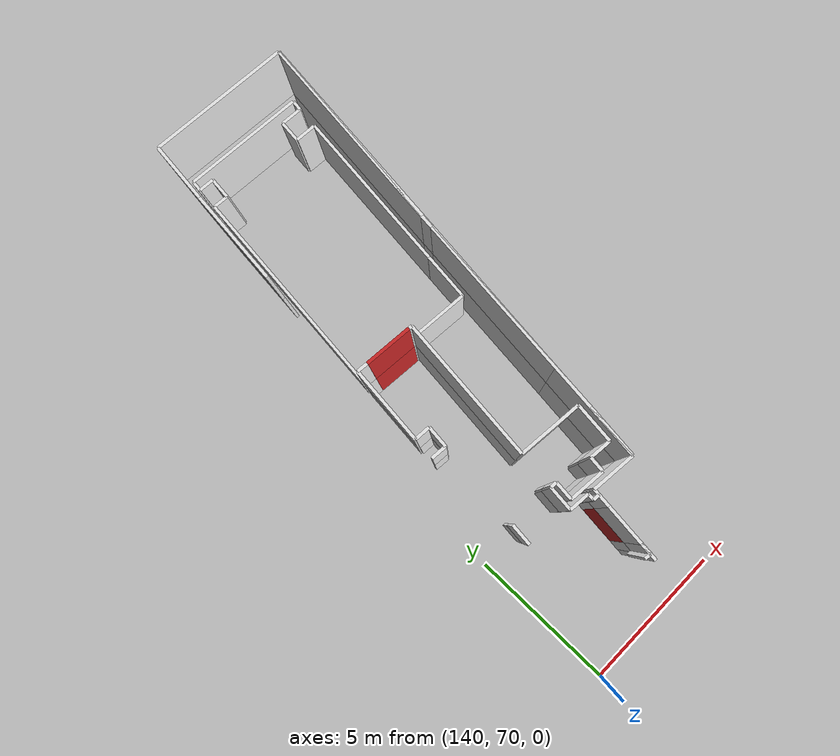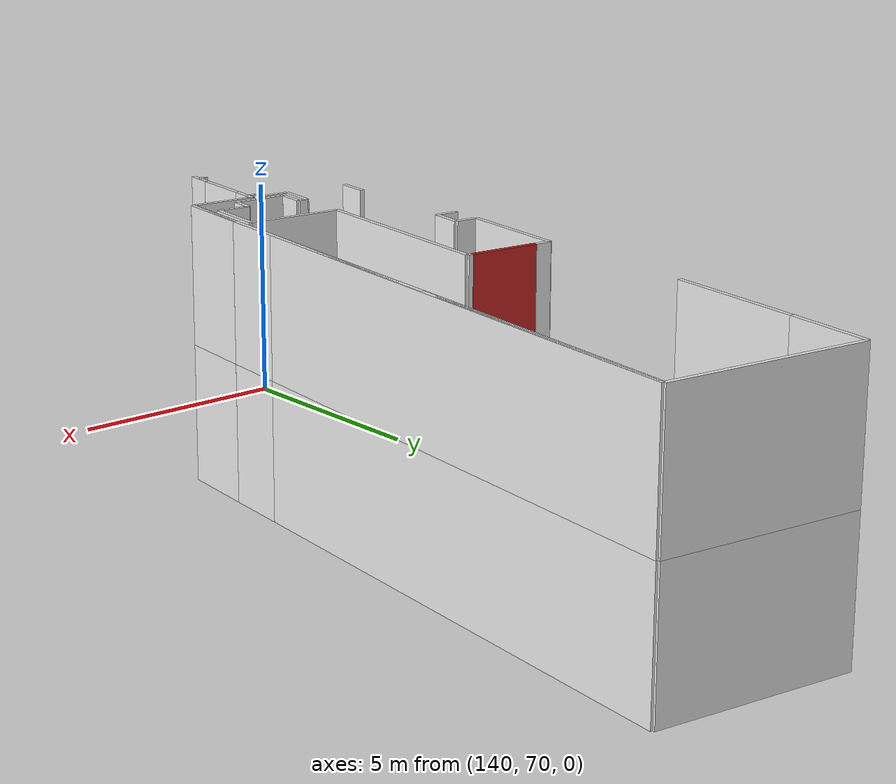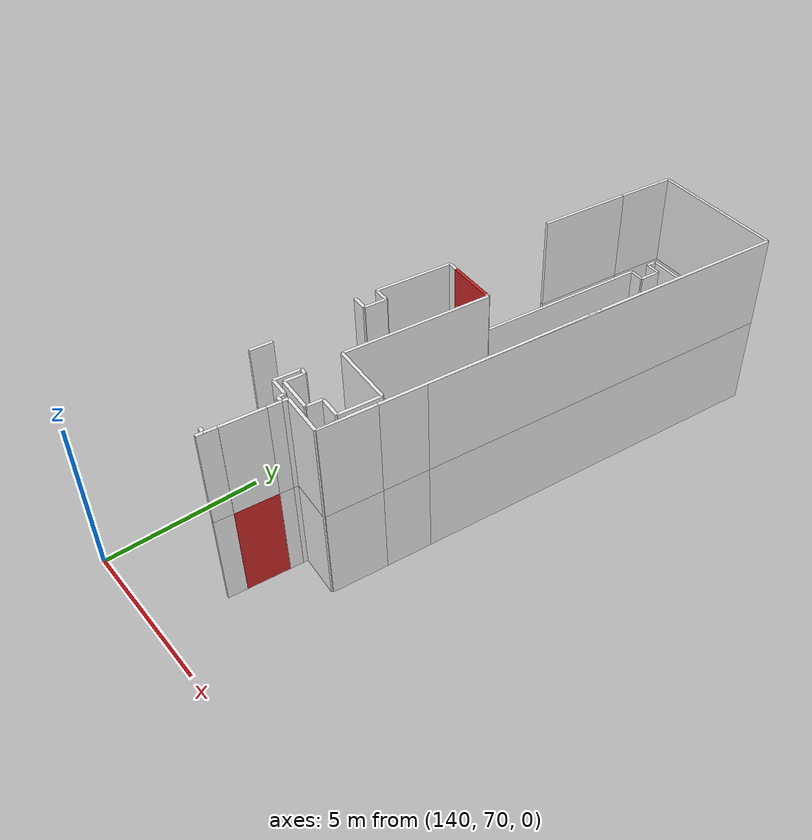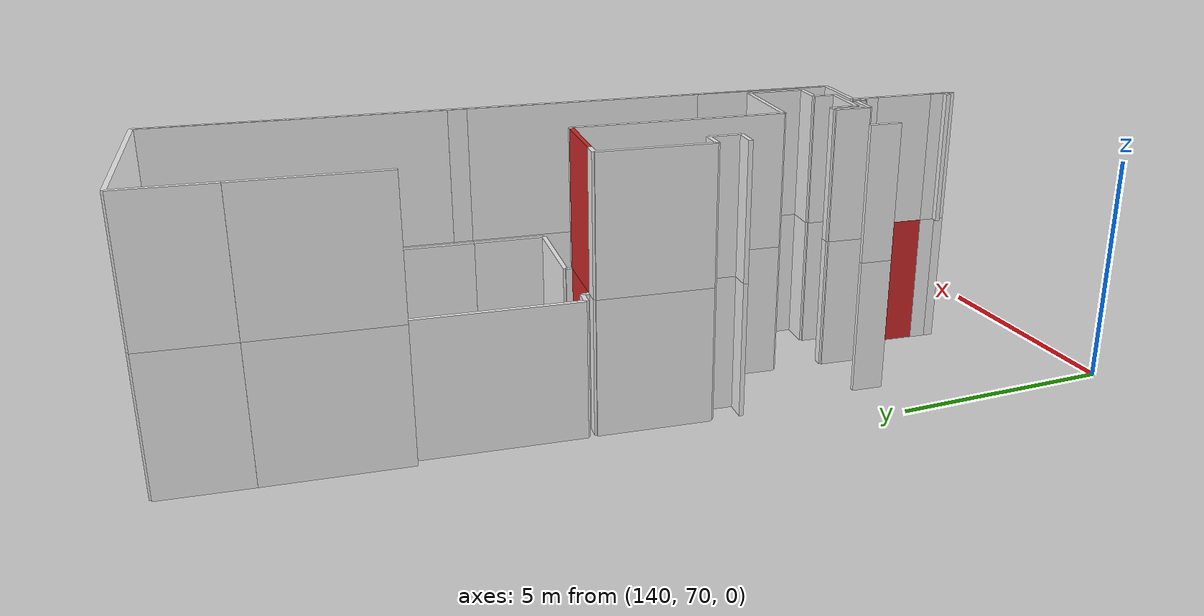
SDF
<sdf version="1.6">
 <world name="default">
  <model name="wall_142.5_81.3_1.5">
   <static>true</static>
   <pose>142.54999999998836 81.33499999996275 1.5 0 0 -0.09966865273705577</pose>
   <link name="link">
    <visual name="visual">
     <geometry><box><size>1.5074813432052014 0.1 3</size></box></geometry>
     <material>
      <script><uri>file://media/materials/scripts/gazebo.material</uri><name>Gazebo/Red</name></script>
     </material>
    </visual>
    <collision name="collision"><geometry><box><size>1.5074813432052014 0.1 3</size></box></geometry></collision>
   </link>
  </model>
  <model name="wall_143.5_73.3_1.5">
   <static>true</static>
   <pose>143.4550000000163 73.29500000015832 1.5 0 0 1.4718835320591757</pose>
   <link name="link">
    <visual name="visual">
     <geometry><box><size>1.3164345787571878 0.1 3</size></box></geometry>
     <material>
      <script><uri>file://media/materials/scripts/gazebo.material</uri><name>Gazebo/Red</name></script>
     </material>
    </visual>
    <collision name="collision"><geometry><box><size>1.3164345787571878 0.1 3</size></box></geometry></collision>
   </link>
  </model>
  <model name="wall_142.5_81.3_4.5">
   <static>true</static>
   <pose>142.54999999998836 81.33499999996275 4.5 0 0 -0.09966865273705577</pose>
   <link name="link">
    <visual name="visual">
     <geometry><box><size>1.5074813432052014 0.1 3</size></box></geometry>
     <material>
      <script><uri>file://media/materials/scripts/gazebo.material</uri><name>Gazebo/Red</name></script>
     </material>
    </visual>
    <collision name="collision"><geometry><box><size>1.5074813432052014 0.1 3</size></box></geometry></collision>
   </link>
  </model>
  <model name="wall_142.9_75.4_1.5">
   <static>true</static>
   <pose>142.9100000000035 75.42999999993481 1.5 0 0 -0.09966865257760905</pose>
   <link name="link">
    <visual name="visual">
     <geometry><box><size>0.20099751243585498 0.1 3</size></box></geometry>
     <material>
      <script><uri>file://media/materials/scripts/gazebo.material</uri><name>Gazebo/White</name></script>
     </material>
    </visual>
    <collision name="collision"><geometry><box><size>0.20099751243585498 0.1 3</size></box></geometry></collision>
   </link>
  </model>
  <model name="wall_143.0_75.1_1.5">
   <static>true</static>
   <pose>142.98000000001048 75.11999999987893 1.5 0 0 -1.6704649792668482</pose>
   <link name="link">
    <visual name="visual">
     <geometry><box><size>0.6029925373596918 0.1 3</size></box></geometry>
     <material>
      <script><uri>file://media/materials/scripts/gazebo.material</uri><name>Gazebo/White</name></script>
     </material>
    </visual>
    <collision name="collision"><geometry><box><size>0.6029925373596918 0.1 3</size></box></geometry></collision>
   </link>
  </model>
  <model name="wall_143.5_74.8_1.5">
   <static>true</static>
   <pose>143.52499999999418 74.76499999989755 1.5 0 0 -0.09536204679293706</pose>
   <link name="link">
    <visual name="visual">
     <geometry><box><size>1.1552488908849852 0.1 3</size></box></geometry>
     <material>
      <script><uri>file://media/materials/scripts/gazebo.material</uri><name>Gazebo/White</name></script>
     </material>
    </visual>
    <collision name="collision"><geometry><box><size>1.1552488908849852 0.1 3</size></box></geometry></collision>
   </link>
  </model>
  <model name="wall_144.1_75.0_1.5">
   <static>true</static>
   <pose>144.125 74.9550000000745 1.5 0 0 1.469107474983833</pose>
   <link name="link">
    <visual name="visual">
     <geometry><box><size>0.4925444144680799 0.1 3</size></box></geometry>
     <material>
      <script><uri>file://media/materials/scripts/gazebo.material</uri><name>Gazebo/White</name></script>
     </material>
    </visual>
    <collision name="collision"><geometry><box><size>0.4925444144680799 0.1 3</size></box></geometry></collision>
   </link>
  </model>
  <model name="wall_144.5_75.2_1.5">
   <static>true</static>
   <pose>144.49500000002445 75.16500000003725 1.5 0 0 -0.10110337216347741</pose>
   <link name="link">
    <visual name="visual">
     <geometry><box><size>0.6935416354083843 0.1 3</size></box></geometry>
     <material>
      <script><uri>file://media/materials/scripts/gazebo.material</uri><name>Gazebo/White</name></script>
     </material>
    </visual>
    <collision name="collision"><geometry><box><size>0.6935416354083843 0.1 3</size></box></geometry></collision>
   </link>
  </model>
  <model name="wall_144.9_75.8_1.5">
   <static>true</static>
   <pose>144.90499999999884 75.77499999990687 1.5 0 0 1.4703602147900217</pose>
   <link name="link">
    <visual name="visual">
     <geometry><box><size>1.2965338407007314 0.1 3</size></box></geometry>
     <material>
      <script><uri>file://media/materials/scripts/gazebo.material</uri><name>Gazebo/White</name></script>
     </material>
    </visual>
    <collision name="collision"><geometry><box><size>1.2965338407007314 0.1 3</size></box></geometry></collision>
   </link>
  </model>
  <model name="wall_143.9_76.5_1.5">
   <static>true</static>
   <pose>143.94999999998254 76.52499999990687 1.5 0 0 3.039012801188522</pose>
   <link name="link">
    <visual name="visual">
     <geometry><box><size>2.050780339260853 0.1 3</size></box></geometry>
     <material>
      <script><uri>file://media/materials/scripts/gazebo.material</uri><name>Gazebo/White</name></script>
     </material>
    </visual>
    <collision name="collision"><geometry><box><size>2.050780339260853 0.1 3</size></box></geometry></collision>
   </link>
  </model>
  <model name="wall_143.2_78.9_1.5">
   <static>true</static>
   <pose>143.16500000000815 78.93999999994412 1.5 0 0 1.4694135127045715</pose>
   <link name="link">
    <visual name="visual">
     <geometry><box><size>4.6438453894440865 0.1 3</size></box></geometry>
     <material>
      <script><uri>file://media/materials/scripts/gazebo.material</uri><name>Gazebo/White</name></script>
     </material>
    </visual>
    <collision name="collision"><geometry><box><size>4.6438453894440865 0.1 3</size></box></geometry></collision>
   </link>
  </model>
  <model name="wall_143.4_81.3_1.5">
   <static>true</static>
   <pose>143.35000000000582 81.25499999988824 1.5 0 0 3.041924003346254</pose>
   <link name="link">
    <visual name="visual">
     <geometry><box><size>0.10049875622371936 0.1 3</size></box></geometry>
     <material>
      <script><uri>file://media/materials/scripts/gazebo.material</uri><name>Gazebo/White</name></script>
     </material>
    </visual>
    <collision name="collision"><geometry><box><size>0.10049875622371936 0.1 3</size></box></geometry></collision>
   </link>
  </model>
  <model name="wall_141.6_81.4_1.5">
   <static>true</static>
   <pose>141.63000000000466 81.43000000016764 1.5 0 0 3.0244839089037323</pose>
   <link name="link">
    <visual name="visual">
     <geometry><box><size>0.3423448553444534 0.1 3</size></box></geometry>
     <material>
      <script><uri>file://media/materials/scripts/gazebo.material</uri><name>Gazebo/White</name></script>
     </material>
    </visual>
    <collision name="collision"><geometry><box><size>0.3423448553444534 0.1 3</size></box></geometry></collision>
   </link>
  </model>
  <model name="wall_141.3_80.2_1.5">
   <static>true</static>
   <pose>141.33500000002095 80.22500000009313 1.5 0 0 -1.6724851785502959</pose>
   <link name="link">
    <visual name="visual">
     <geometry><box><size>2.4627220713902527 0.1 3</size></box></geometry>
     <material>
      <script><uri>file://media/materials/scripts/gazebo.material</uri><name>Gazebo/White</name></script>
     </material>
    </visual>
    <collision name="collision"><geometry><box><size>2.4627220713902527 0.1 3</size></box></geometry></collision>
   </link>
  </model>
  <model name="wall_141.5_79.0_1.5">
   <static>true</static>
   <pose>141.46000000002095 78.97999999998137 1.5 0 0 -0.07982998578626932</pose>
   <link name="link">
    <visual name="visual">
     <geometry><box><size>0.5015974481623489 0.1 3</size></box></geometry>
     <material>
      <script><uri>file://media/materials/scripts/gazebo.material</uri><name>Gazebo/White</name></script>
     </material>
    </visual>
    <collision name="collision"><geometry><box><size>0.5015974481623489 0.1 3</size></box></geometry></collision>
   </link>
  </model>
  <model name="wall_141.7_78.6_1.5">
   <static>true</static>
   <pose>141.67500000001746 78.61499999999069 1.5 0 0 -1.6718996985493473</pose>
   <link name="link">
    <visual name="visual">
     <geometry><box><size>0.693541635321099 0.1 3</size></box></geometry>
     <material>
      <script><uri>file://media/materials/scripts/gazebo.material</uri><name>Gazebo/White</name></script>
     </material>
    </visual>
    <collision name="collision"><geometry><box><size>0.693541635321099 0.1 3</size></box></geometry></collision>
   </link>
  </model>
  <model name="wall_141.4_78.3_1.5">
   <static>true</static>
   <pose>141.39000000001397 78.2949999999255 1.5 0 0 3.0419240014674718</pose>
   <link name="link">
    <visual name="visual">
     <geometry><box><size>0.5024937810375105 0.1 3</size></box></geometry>
     <material>
      <script><uri>file://media/materials/scripts/gazebo.material</uri><name>Gazebo/White</name></script>
     </material>
    </visual>
    <collision name="collision"><geometry><box><size>0.5024937810375105 0.1 3</size></box></geometry></collision>
   </link>
  </model>
  <model name="wall_141.3_75.1_1.5">
   <static>true</static>
   <pose>141.32499999998254 75.14500000001863 1.5 0 0 -1.6718996984815795</pose>
   <link name="link">
    <visual name="visual">
     <geometry><box><size>0.6935416357843824 0.1 3</size></box></geometry>
     <material>
      <script><uri>file://media/materials/scripts/gazebo.material</uri><name>Gazebo/White</name></script>
     </material>
    </visual>
    <collision name="collision"><geometry><box><size>0.6935416357843824 0.1 3</size></box></geometry></collision>
   </link>
  </model>
  <model name="wall_143.4_72.5_1.5">
   <static>true</static>
   <pose>143.36999999999534 72.45999999996275 1.5 0 0 1.460139105621001</pose>
   <link name="link">
    <visual name="visual">
     <geometry><box><size>0.36221540586283607 0.1 3</size></box></geometry>
     <material>
      <script><uri>file://media/materials/scripts/gazebo.material</uri><name>Gazebo/White</name></script>
     </material>
    </visual>
    <collision name="collision"><geometry><box><size>0.36221540586283607 0.1 3</size></box></geometry></collision>
   </link>
  </model>
  <model name="wall_143.5_74.2_1.5">
   <static>true</static>
   <pose>143.54000000000815 74.15500000002794 1.5 0 0 1.4735431285193206</pose>
   <link name="link">
    <visual name="visual">
     <geometry><box><size>0.41194659816373147 0.1 3</size></box></geometry>
     <material>
      <script><uri>file://media/materials/scripts/gazebo.material</uri><name>Gazebo/White</name></script>
     </material>
    </visual>
    <collision name="collision"><geometry><box><size>0.41194659816373147 0.1 3</size></box></geometry></collision>
   </link>
  </model>
  <model name="wall_143.5_74.4_1.5">
   <static>true</static>
   <pose>143.45999999999185 74.36499999999069 1.5 0 0 3.0916342566630535</pose>
   <link name="link">
    <visual name="visual">
     <geometry><box><size>0.20024984396872697 0.1 3</size></box></geometry>
     <material>
      <script><uri>file://media/materials/scripts/gazebo.material</uri><name>Gazebo/White</name></script>
     </material>
    </visual>
    <collision name="collision"><geometry><box><size>0.20024984396872697 0.1 3</size></box></geometry></collision>
   </link>
  </model>
  <model name="wall_143.4_74.5_1.5">
   <static>true</static>
   <pose>143.36999999999534 74.47500000009313 1.5 0 0 1.4758446203474973</pose>
   <link name="link">
    <visual name="visual">
     <geometry><box><size>0.21095023106197072 0.1 3</size></box></geometry>
     <material>
      <script><uri>file://media/materials/scripts/gazebo.material</uri><name>Gazebo/White</name></script>
     </material>
    </visual>
    <collision name="collision"><geometry><box><size>0.21095023106197072 0.1 3</size></box></geometry></collision>
   </link>
  </model>
  <model name="wall_143.1_74.6_1.5">
   <static>true</static>
   <pose>143.05499999999302 74.61000000010245 1.5 0 0 3.0495458046444233</pose>
   <link name="link">
    <visual name="visual">
     <geometry><box><size>0.6527633568430243 0.1 3</size></box></geometry>
     <material>
      <script><uri>file://media/materials/scripts/gazebo.material</uri><name>Gazebo/White</name></script>
     </material>
    </visual>
    <collision name="collision"><geometry><box><size>0.6527633568430243 0.1 3</size></box></geometry></collision>
   </link>
  </model>
  <model name="wall_142.8_75.0_1.5">
   <static>true</static>
   <pose>142.76999999998952 75.04000000003725 1.5 0 0 1.471127674260511</pose>
   <link name="link">
    <visual name="visual">
     <geometry><box><size>0.8039900495059528 0.1 3</size></box></geometry>
     <material>
      <script><uri>file://media/materials/scripts/gazebo.material</uri><name>Gazebo/White</name></script>
     </material>
    </visual>
    <collision name="collision"><geometry><box><size>0.8039900495059528 0.1 3</size></box></geometry></collision>
   </link>
  </model>
  <model name="wall_143.3_81.4_1.5">
   <static>true</static>
   <pose>143.30499999999302 81.35499999998137 1.5 0 0 1.5182132652482727</pose>
   <link name="link">
    <visual name="visual">
     <geometry><box><size>0.19026297631410952 0.1 3</size></box></geometry>
     <material>
      <script><uri>file://media/materials/scripts/gazebo.material</uri><name>Gazebo/White</name></script>
     </material>
    </visual>
    <collision name="collision"><geometry><box><size>0.19026297631410952 0.1 3</size></box></geometry></collision>
   </link>
  </model>
  <model name="wall_144.4_81.3_1.5">
   <static>true</static>
   <pose>144.38000000000466 81.34500000020489 1.5 0 0 -0.0978176596774659</pose>
   <link name="link">
    <visual name="visual">
     <geometry><box><size>2.1502790516684445 0.1 3</size></box></geometry>
     <material>
      <script><uri>file://media/materials/scripts/gazebo.material</uri><name>Gazebo/White</name></script>
     </material>
    </visual>
    <collision name="collision"><geometry><box><size>2.1502790516684445 0.1 3</size></box></geometry></collision>
   </link>
  </model>
  <model name="wall_145.5_82.0_1.5">
   <static>true</static>
   <pose>145.52999999999884 82.03000000002794 1.5 0 0 1.4698745421188324</pose>
   <link name="link">
    <visual name="visual">
     <geometry><box><size>1.5880806020966798 0.1 3</size></box></geometry>
     <material>
      <script><uri>file://media/materials/scripts/gazebo.material</uri><name>Gazebo/White</name></script>
     </material>
    </visual>
    <collision name="collision"><geometry><box><size>1.5880806020966798 0.1 3</size></box></geometry></collision>
   </link>
  </model>
  <model name="wall_145.9_85.6_1.5">
   <static>true</static>
   <pose>145.88999999998487 85.56999999983236 1.5 0 0 1.4693278202361642</pose>
   <link name="link">
    <visual name="visual">
     <geometry><box><size>5.528435583417554 0.1 3</size></box></geometry>
     <material>
      <script><uri>file://media/materials/scripts/gazebo.material</uri><name>Gazebo/White</name></script>
     </material>
    </visual>
    <collision name="collision"><geometry><box><size>5.528435583417554 0.1 3</size></box></geometry></collision>
   </link>
  </model>
  <model name="wall_145.8_88.4_1.5">
   <static>true</static>
   <pose>145.81999999997788 88.35499999998137 1.5 0 0 3.041924000678746</pose>
   <link name="link">
    <visual name="visual">
     <geometry><box><size>0.7034912935197005 0.1 3</size></box></geometry>
     <material>
      <script><uri>file://media/materials/scripts/gazebo.material</uri><name>Gazebo/White</name></script>
     </material>
    </visual>
    <collision name="collision"><geometry><box><size>0.7034912935197005 0.1 3</size></box></geometry></collision>
   </link>
  </model>
  <model name="wall_145.5_88.7_1.5">
   <static>true</static>
   <pose>145.50499999997555 88.73999999999069 1.5 0 0 1.4711276742543362</pose>
   <link name="link">
    <visual name="visual">
     <geometry><box><size>0.7034912932011471 0.1 3</size></box></geometry>
     <material>
      <script><uri>file://media/materials/scripts/gazebo.material</uri><name>Gazebo/White</name></script>
     </material>
    </visual>
    <collision name="collision"><geometry><box><size>0.7034912932011471 0.1 3</size></box></geometry></collision>
   </link>
  </model>
  <model name="wall_145.9_89.1_1.5">
   <static>true</static>
   <pose>145.88999999998487 89.05499999993481 1.5 0 0 -0.0996686522524036</pose>
   <link name="link">
    <visual name="visual">
     <geometry><box><size>0.7034912934733655 0.1 3</size></box></geometry>
     <material>
      <script><uri>file://media/materials/scripts/gazebo.material</uri><name>Gazebo/White</name></script>
     </material>
    </visual>
    <collision name="collision"><geometry><box><size>0.7034912934733655 0.1 3</size></box></geometry></collision>
   </link>
  </model>
  <model name="wall_146.3_89.2_1.5">
   <static>true</static>
   <pose>146.2600000000093 89.18999999994412 1.5 0 0 1.4536875820691035</pose>
   <link name="link">
    <visual name="visual">
     <geometry><box><size>0.3423448552288355 0.1 3</size></box></geometry>
     <material>
      <script><uri>file://media/materials/scripts/gazebo.material</uri><name>Gazebo/White</name></script>
     </material>
    </visual>
    <collision name="collision"><geometry><box><size>0.3423448552288355 0.1 3</size></box></geometry></collision>
   </link>
  </model>
  <model name="wall_144.3_89.6_1.5">
   <static>true</static>
   <pose>144.2850000000035 89.55999999982305 1.5 0 0 3.041675862170233</pose>
   <link name="link">
    <visual name="visual">
     <geometry><box><size>4.01000000003936 0.1 3</size></box></geometry>
     <material>
      <script><uri>file://media/materials/scripts/gazebo.material</uri><name>Gazebo/White</name></script>
     </material>
    </visual>
    <collision name="collision"><geometry><box><size>4.01000000003936 0.1 3</size></box></geometry></collision>
   </link>
  </model>
  <model name="wall_142.3_89.6_1.5">
   <static>true</static>
   <pose>142.26999999998952 89.58999999985099 1.5 0 0 -1.6879050713518278</pose>
   <link name="link">
    <visual name="visual">
     <geometry><box><size>0.34234485522203445 0.1 3</size></box></geometry>
     <material>
      <script><uri>file://media/materials/scripts/gazebo.material</uri><name>Gazebo/White</name></script>
     </material>
    </visual>
    <collision name="collision"><geometry><box><size>0.34234485522203445 0.1 3</size></box></geometry></collision>
   </link>
  </model>
  <model name="wall_142.5_89.4_1.5">
   <static>true</static>
   <pose>142.5 89.39500000001863 1.5 0 0 -0.0996686521223214</pose>
   <link name="link">
    <visual name="visual">
     <geometry><box><size>0.5024937810375105 0.1 3</size></box></geometry>
     <material>
      <script><uri>file://media/materials/scripts/gazebo.material</uri><name>Gazebo/White</name></script>
     </material>
    </visual>
    <collision name="collision"><geometry><box><size>0.5024937810375105 0.1 3</size></box></geometry></collision>
   </link>
  </model>
  <model name="wall_142.7_89.0_1.5">
   <static>true</static>
   <pose>142.7149999999965 89.02000000001863 1.5 0 0 -1.6704649792695925</pose>
   <link name="link">
    <visual name="visual">
     <geometry><box><size>0.7034912936644975 0.1 3</size></box></geometry>
     <material>
      <script><uri>file://media/materials/scripts/gazebo.material</uri><name>Gazebo/White</name></script>
     </material>
    </visual>
    <collision name="collision"><geometry><box><size>0.7034912936644975 0.1 3</size></box></geometry></collision>
   </link>
  </model>
  <model name="wall_142.4_88.7_1.5">
   <static>true</static>
   <pose>142.42999999999302 88.69500000006519 1.5 0 0 3.0419240005453703</pose>
   <link name="link">
    <visual name="visual">
     <geometry><box><size>0.5024937810838455 0.1 3</size></box></geometry>
     <material>
      <script><uri>file://media/materials/scripts/gazebo.material</uri><name>Gazebo/White</name></script>
     </material>
    </visual>
    <collision name="collision"><geometry><box><size>0.5024937810838455 0.1 3</size></box></geometry></collision>
   </link>
  </model>
  <model name="wall_141.8_85.2_1.5">
   <static>true</static>
   <pose>141.82000000000698 85.18000000016764 1.5 0 0 -1.6721428300555992</pose>
   <link name="link">
    <visual name="visual">
     <geometry><box><size>7.1165160015990105 0.1 3</size></box></geometry>
     <material>
      <script><uri>file://media/materials/scripts/gazebo.material</uri><name>Gazebo/White</name></script>
     </material>
    </visual>
    <collision name="collision"><geometry><box><size>7.1165160015990105 0.1 3</size></box></geometry></collision>
   </link>
  </model>
  <model name="wall_141.6_81.6_1.5">
   <static>true</static>
   <pose>141.64000000001397 81.62000000011176 1.5 0 0 -0.11065722128037307</pose>
   <link name="link">
    <visual name="visual">
     <geometry><box><size>0.3622154055157262 0.1 3</size></box></geometry>
     <material>
      <script><uri>file://media/materials/scripts/gazebo.material</uri><name>Gazebo/White</name></script>
     </material>
    </visual>
    <collision name="collision"><geometry><box><size>0.3622154055157262 0.1 3</size></box></geometry></collision>
   </link>
  </model>
  <model name="wall_141.8_81.5_1.5">
   <static>true</static>
   <pose>141.80999999999767 81.50500000012107 1.5 0 0 -1.675673265652709</pose>
   <link name="link">
    <visual name="visual">
     <geometry><box><size>0.19104973169180559 0.1 3</size></box></geometry>
     <material>
      <script><uri>file://media/materials/scripts/gazebo.material</uri><name>Gazebo/White</name></script>
     </material>
    </visual>
    <collision name="collision"><geometry><box><size>0.19104973169180559 0.1 3</size></box></geometry></collision>
   </link>
  </model>
  <model name="wall_141.8_86.6_1.5">
   <static>true</static>
   <pose>141.76999999998952 86.61499999999069 1.5 0 0 1.4707965484838321</pose>
   <link name="link">
    <visual name="visual">
     <geometry><box><size>3.005012478933323 0.1 3</size></box></geometry>
     <material>
      <script><uri>file://media/materials/scripts/gazebo.material</uri><name>Gazebo/White</name></script>
     </material>
    </visual>
    <collision name="collision"><geometry><box><size>3.005012478933323 0.1 3</size></box></geometry></collision>
   </link>
  </model>
  <model name="wall_143.6_74.5_1.5">
   <static>true</static>
   <pose>143.57000000000698 74.45499999984168 1.5 0 0 1.4659193879370842</pose>
   <link name="link">
    <visual name="visual">
     <geometry><box><size>0.19104973169180559 0.1 3</size></box></geometry>
     <material>
      <script><uri>file://media/materials/scripts/gazebo.material</uri><name>Gazebo/White</name></script>
     </material>
    </visual>
    <collision name="collision"><geometry><box><size>0.19104973169180559 0.1 3</size></box></geometry></collision>
   </link>
  </model>
  <model name="wall_144.3_74.5_1.5">
   <static>true</static>
   <pose>144.27999999999884 74.47999999998137 1.5 0 0 -0.09966865225652011</pose>
   <link name="link">
    <visual name="visual">
     <geometry><box><size>1.4069825868888122 0.1 3</size></box></geometry>
     <material>
      <script><uri>file://media/materials/scripts/gazebo.material</uri><name>Gazebo/White</name></script>
     </material>
    </visual>
    <collision name="collision"><geometry><box><size>1.4069825868888122 0.1 3</size></box></geometry></collision>
   </link>
  </model>
  <model name="wall_145.1_75.3_1.5">
   <static>true</static>
   <pose>145.06999999997788 75.2750000001397 1.5 0 0 1.4671231190540195</pose>
   <link name="link">
    <visual name="visual">
     <geometry><box><size>1.7393389548713725 0.1 3</size></box></geometry>
     <material>
      <script><uri>file://media/materials/scripts/gazebo.material</uri><name>Gazebo/White</name></script>
     </material>
    </visual>
    <collision name="collision"><geometry><box><size>1.7393389548713725 0.1 3</size></box></geometry></collision>
   </link>
  </model>
  <model name="wall_145.5_79.5_1.5">
   <static>true</static>
   <pose>145.48499999998603 79.46999999997206 1.5 0 0 1.473506851962698</pose>
   <link name="link">
    <visual name="visual">
     <geometry><box><size>6.691644042820307 0.1 3</size></box></geometry>
     <material>
      <script><uri>file://media/materials/scripts/gazebo.material</uri><name>Gazebo/White</name></script>
     </material>
    </visual>
    <collision name="collision"><geometry><box><size>6.691644042820307 0.1 3</size></box></geometry></collision>
   </link>
  </model>
  <model name="wall_145.8_83.0_1.5">
   <static>true</static>
   <pose>145.8299999999872 83.01000000000931 1.5 0 0 1.4758446205894842</pose>
   <link name="link">
    <visual name="visual">
     <geometry><box><size>0.42190046258198655 0.1 3</size></box></geometry>
     <material>
      <script><uri>file://media/materials/scripts/gazebo.material</uri><name>Gazebo/White</name></script>
     </material>
    </visual>
    <collision name="collision"><geometry><box><size>0.42190046258198655 0.1 3</size></box></geometry></collision>
   </link>
  </model>
  <model name="wall_146.2_86.4_1.5">
   <static>true</static>
   <pose>146.17999999999302 86.38000000012107 1.5 0 0 1.4667431110995115</pose>
   <link name="link">
    <visual name="visual">
     <geometry><box><size>6.354368575863701 0.1 3</size></box></geometry>
     <material>
      <script><uri>file://media/materials/scripts/gazebo.material</uri><name>Gazebo/White</name></script>
     </material>
    </visual>
    <collision name="collision"><geometry><box><size>6.354368575863701 0.1 3</size></box></geometry></collision>
   </link>
  </model>
  <model name="wall_144.3_89.8_1.5">
   <static>true</static>
   <pose>144.32000000000698 89.76500000013039 1.5 0 0 3.0392121432977204</pose>
   <link name="link">
    <visual name="visual">
     <geometry><box><size>4.403055757108741 0.1 3</size></box></geometry>
     <material>
      <script><uri>file://media/materials/scripts/gazebo.material</uri><name>Gazebo/White</name></script>
     </material>
    </visual>
    <collision name="collision"><geometry><box><size>4.403055757108741 0.1 3</size></box></geometry></collision>
   </link>
  </model>
  <model name="wall_142.0_89.1_1.5">
   <static>true</static>
   <pose>142.02499999999418 89.05000000004657 1.5 0 0 -1.682037319054423</pose>
   <link name="link">
    <visual name="visual">
     <geometry><box><size>1.8916923643498365 0.1 3</size></box></geometry>
     <material>
      <script><uri>file://media/materials/scripts/gazebo.material</uri><name>Gazebo/White</name></script>
     </material>
    </visual>
    <collision name="collision"><geometry><box><size>1.8916923643498365 0.1 3</size></box></geometry></collision>
   </link>
  </model>
  <model name="wall_145.7_82.0_1.5">
   <static>true</static>
   <pose>145.74499999999534 81.97500000009313 1.5 0 0 -1.6715773258821318</pose>
   <link name="link">
    <visual name="visual">
     <geometry><box><size>15.2071627858948 0.1 3</size></box></geometry>
     <material>
      <script><uri>file://media/materials/scripts/gazebo.material</uri><name>Gazebo/White</name></script>
     </material>
    </visual>
    <collision name="collision"><geometry><box><size>15.2071627858948 0.1 3</size></box></geometry></collision>
   </link>
  </model>
  <model name="wall_143.4_72.4_1.5">
   <static>true</static>
   <pose>143.36000000001513 72.35000000009313 1.5 0 0 -1.673877935300477</pose>
   <link name="link">
    <visual name="visual">
     <geometry><box><size>0.5830951895584008 0.1 3</size></box></geometry>
     <material>
      <script><uri>file://media/materials/scripts/gazebo.material</uri><name>Gazebo/White</name></script>
     </material>
    </visual>
    <collision name="collision"><geometry><box><size>0.5830951895584008 0.1 3</size></box></geometry></collision>
   </link>
  </model>
  <model name="wall_142.9_75.4_4.5">
   <static>true</static>
   <pose>142.9100000000035 75.42999999993481 4.5 0 0 -0.09966865257760905</pose>
   <link name="link">
    <visual name="visual">
     <geometry><box><size>0.20099751243585498 0.1 3</size></box></geometry>
     <material>
      <script><uri>file://media/materials/scripts/gazebo.material</uri><name>Gazebo/White</name></script>
     </material>
    </visual>
    <collision name="collision"><geometry><box><size>0.20099751243585498 0.1 3</size></box></geometry></collision>
   </link>
  </model>
  <model name="wall_143.0_75.1_4.5">
   <static>true</static>
   <pose>142.98000000001048 75.11999999987893 4.5 0 0 -1.6704649792668482</pose>
   <link name="link">
    <visual name="visual">
     <geometry><box><size>0.6029925373596918 0.1 3</size></box></geometry>
     <material>
      <script><uri>file://media/materials/scripts/gazebo.material</uri><name>Gazebo/White</name></script>
     </material>
    </visual>
    <collision name="collision"><geometry><box><size>0.6029925373596918 0.1 3</size></box></geometry></collision>
   </link>
  </model>
  <model name="wall_143.5_74.8_4.5">
   <static>true</static>
   <pose>143.52499999999418 74.76499999989755 4.5 0 0 -0.09536204679293706</pose>
   <link name="link">
    <visual name="visual">
     <geometry><box><size>1.1552488908849852 0.1 3</size></box></geometry>
     <material>
      <script><uri>file://media/materials/scripts/gazebo.material</uri><name>Gazebo/White</name></script>
     </material>
    </visual>
    <collision name="collision"><geometry><box><size>1.1552488908849852 0.1 3</size></box></geometry></collision>
   </link>
  </model>
  <model name="wall_144.1_75.0_4.5">
   <static>true</static>
   <pose>144.125 74.9550000000745 4.5 0 0 1.469107474983833</pose>
   <link name="link">
    <visual name="visual">
     <geometry><box><size>0.4925444144680799 0.1 3</size></box></geometry>
     <material>
      <script><uri>file://media/materials/scripts/gazebo.material</uri><name>Gazebo/White</name></script>
     </material>
    </visual>
    <collision name="collision"><geometry><box><size>0.4925444144680799 0.1 3</size></box></geometry></collision>
   </link>
  </model>
  <model name="wall_144.5_75.2_4.5">
   <static>true</static>
   <pose>144.49500000002445 75.16500000003725 4.5 0 0 -0.10110337216347741</pose>
   <link name="link">
    <visual name="visual">
     <geometry><box><size>0.6935416354083843 0.1 3</size></box></geometry>
     <material>
      <script><uri>file://media/materials/scripts/gazebo.material</uri><name>Gazebo/White</name></script>
     </material>
    </visual>
    <collision name="collision"><geometry><box><size>0.6935416354083843 0.1 3</size></box></geometry></collision>
   </link>
  </model>
  <model name="wall_144.9_75.8_4.5">
   <static>true</static>
   <pose>144.90499999999884 75.77499999990687 4.5 0 0 1.4703602147900217</pose>
   <link name="link">
    <visual name="visual">
     <geometry><box><size>1.2965338407007314 0.1 3</size></box></geometry>
     <material>
      <script><uri>file://media/materials/scripts/gazebo.material</uri><name>Gazebo/White</name></script>
     </material>
    </visual>
    <collision name="collision"><geometry><box><size>1.2965338407007314 0.1 3</size></box></geometry></collision>
   </link>
  </model>
  <model name="wall_143.9_76.5_4.5">
   <static>true</static>
   <pose>143.94999999998254 76.52499999990687 4.5 0 0 3.039012801188522</pose>
   <link name="link">
    <visual name="visual">
     <geometry><box><size>2.050780339260853 0.1 3</size></box></geometry>
     <material>
      <script><uri>file://media/materials/scripts/gazebo.material</uri><name>Gazebo/White</name></script>
     </material>
    </visual>
    <collision name="collision"><geometry><box><size>2.050780339260853 0.1 3</size></box></geometry></collision>
   </link>
  </model>
  <model name="wall_143.2_78.9_4.5">
   <static>true</static>
   <pose>143.16500000000815 78.93999999994412 4.5 0 0 1.4694135127045715</pose>
   <link name="link">
    <visual name="visual">
     <geometry><box><size>4.6438453894440865 0.1 3</size></box></geometry>
     <material>
      <script><uri>file://media/materials/scripts/gazebo.material</uri><name>Gazebo/White</name></script>
     </material>
    </visual>
    <collision name="collision"><geometry><box><size>4.6438453894440865 0.1 3</size></box></geometry></collision>
   </link>
  </model>
  <model name="wall_143.4_81.3_4.5">
   <static>true</static>
   <pose>143.35000000000582 81.25499999988824 4.5 0 0 3.041924003346254</pose>
   <link name="link">
    <visual name="visual">
     <geometry><box><size>0.10049875622371936 0.1 3</size></box></geometry>
     <material>
      <script><uri>file://media/materials/scripts/gazebo.material</uri><name>Gazebo/White</name></script>
     </material>
    </visual>
    <collision name="collision"><geometry><box><size>0.10049875622371936 0.1 3</size></box></geometry></collision>
   </link>
  </model>
  <model name="wall_141.6_81.4_4.5">
   <static>true</static>
   <pose>141.63000000000466 81.43000000016764 4.5 0 0 3.0244839089037323</pose>
   <link name="link">
    <visual name="visual">
     <geometry><box><size>0.3423448553444534 0.1 3</size></box></geometry>
     <material>
      <script><uri>file://media/materials/scripts/gazebo.material</uri><name>Gazebo/White</name></script>
     </material>
    </visual>
    <collision name="collision"><geometry><box><size>0.3423448553444534 0.1 3</size></box></geometry></collision>
   </link>
  </model>
  <model name="wall_141.3_80.2_4.5">
   <static>true</static>
   <pose>141.33500000002095 80.22500000009313 4.5 0 0 -1.6724851785502959</pose>
   <link name="link">
    <visual name="visual">
     <geometry><box><size>2.4627220713902527 0.1 3</size></box></geometry>
     <material>
      <script><uri>file://media/materials/scripts/gazebo.material</uri><name>Gazebo/White</name></script>
     </material>
    </visual>
    <collision name="collision"><geometry><box><size>2.4627220713902527 0.1 3</size></box></geometry></collision>
   </link>
  </model>
  <model name="wall_141.5_79.0_4.5">
   <static>true</static>
   <pose>141.46000000002095 78.97999999998137 4.5 0 0 -0.07982998578626932</pose>
   <link name="link">
    <visual name="visual">
     <geometry><box><size>0.5015974481623489 0.1 3</size></box></geometry>
     <material>
      <script><uri>file://media/materials/scripts/gazebo.material</uri><name>Gazebo/White</name></script>
     </material>
    </visual>
    <collision name="collision"><geometry><box><size>0.5015974481623489 0.1 3</size></box></geometry></collision>
   </link>
  </model>
  <model name="wall_141.7_78.6_4.5">
   <static>true</static>
   <pose>141.67500000001746 78.61499999999069 4.5 0 0 -1.6718996985493473</pose>
   <link name="link">
    <visual name="visual">
     <geometry><box><size>0.693541635321099 0.1 3</size></box></geometry>
     <material>
      <script><uri>file://media/materials/scripts/gazebo.material</uri><name>Gazebo/White</name></script>
     </material>
    </visual>
    <collision name="collision"><geometry><box><size>0.693541635321099 0.1 3</size></box></geometry></collision>
   </link>
  </model>
  <model name="wall_141.4_78.3_4.5">
   <static>true</static>
   <pose>141.39000000001397 78.2949999999255 4.5 0 0 3.0419240014674718</pose>
   <link name="link">
    <visual name="visual">
     <geometry><box><size>0.5024937810375105 0.1 3</size></box></geometry>
     <material>
      <script><uri>file://media/materials/scripts/gazebo.material</uri><name>Gazebo/White</name></script>
     </material>
    </visual>
    <collision name="collision"><geometry><box><size>0.5024937810375105 0.1 3</size></box></geometry></collision>
   </link>
  </model>
  <model name="wall_141.3_75.1_4.5">
   <static>true</static>
   <pose>141.32499999998254 75.14500000001863 4.5 0 0 -1.6718996984815795</pose>
   <link name="link">
    <visual name="visual">
     <geometry><box><size>0.6935416357843824 0.1 3</size></box></geometry>
     <material>
      <script><uri>file://media/materials/scripts/gazebo.material</uri><name>Gazebo/White</name></script>
     </material>
    </visual>
    <collision name="collision"><geometry><box><size>0.6935416357843824 0.1 3</size></box></geometry></collision>
   </link>
  </model>
  <model name="wall_143.2_72.3_4.5">
   <static>true</static>
   <pose>143.25 72.28999999980442 4.5 0 0 -0.09966865260642473</pose>
   <link name="link">
    <visual name="visual">
     <geometry><box><size>0.20099751237793617 0.1 3</size></box></geometry>
     <material>
      <script><uri>file://media/materials/scripts/gazebo.material</uri><name>Gazebo/White</name></script>
     </material>
    </visual>
    <collision name="collision"><geometry><box><size>0.20099751237793617 0.1 3</size></box></geometry></collision>
   </link>
  </model>
  <model name="wall_143.4_72.5_4.5">
   <static>true</static>
   <pose>143.36999999999534 72.45999999996275 4.5 0 0 1.460139105621001</pose>
   <link name="link">
    <visual name="visual">
     <geometry><box><size>0.36221540586283607 0.1 3</size></box></geometry>
     <material>
      <script><uri>file://media/materials/scripts/gazebo.material</uri><name>Gazebo/White</name></script>
     </material>
    </visual>
    <collision name="collision"><geometry><box><size>0.36221540586283607 0.1 3</size></box></geometry></collision>
   </link>
  </model>
  <model name="wall_143.5_73.3_4.5">
   <static>true</static>
   <pose>143.4550000000163 73.29500000015832 4.5 0 0 1.4718835320591757</pose>
   <link name="link">
    <visual name="visual">
     <geometry><box><size>1.3164345787571878 0.1 3</size></box></geometry>
     <material>
      <script><uri>file://media/materials/scripts/gazebo.material</uri><name>Gazebo/White</name></script>
     </material>
    </visual>
    <collision name="collision"><geometry><box><size>1.3164345787571878 0.1 3</size></box></geometry></collision>
   </link>
  </model>
  <model name="wall_143.5_74.2_4.5">
   <static>true</static>
   <pose>143.54000000000815 74.15500000002794 4.5 0 0 1.4735431285193206</pose>
   <link name="link">
    <visual name="visual">
     <geometry><box><size>0.41194659816373147 0.1 3</size></box></geometry>
     <material>
      <script><uri>file://media/materials/scripts/gazebo.material</uri><name>Gazebo/White</name></script>
     </material>
    </visual>
    <collision name="collision"><geometry><box><size>0.41194659816373147 0.1 3</size></box></geometry></collision>
   </link>
  </model>
  <model name="wall_143.5_74.4_4.5">
   <static>true</static>
   <pose>143.45999999999185 74.36499999999069 4.5 0 0 3.0916342566630535</pose>
   <link name="link">
    <visual name="visual">
     <geometry><box><size>0.20024984396872697 0.1 3</size></box></geometry>
     <material>
      <script><uri>file://media/materials/scripts/gazebo.material</uri><name>Gazebo/White</name></script>
     </material>
    </visual>
    <collision name="collision"><geometry><box><size>0.20024984396872697 0.1 3</size></box></geometry></collision>
   </link>
  </model>
  <model name="wall_143.4_74.5_4.5">
   <static>true</static>
   <pose>143.36999999999534 74.47500000009313 4.5 0 0 1.4758446203474973</pose>
   <link name="link">
    <visual name="visual">
     <geometry><box><size>0.21095023106197072 0.1 3</size></box></geometry>
     <material>
      <script><uri>file://media/materials/scripts/gazebo.material</uri><name>Gazebo/White</name></script>
     </material>
    </visual>
    <collision name="collision"><geometry><box><size>0.21095023106197072 0.1 3</size></box></geometry></collision>
   </link>
  </model>
  <model name="wall_143.1_74.6_4.5">
   <static>true</static>
   <pose>143.05499999999302 74.61000000010245 4.5 0 0 3.0495458046444233</pose>
   <link name="link">
    <visual name="visual">
     <geometry><box><size>0.6527633568430243 0.1 3</size></box></geometry>
     <material>
      <script><uri>file://media/materials/scripts/gazebo.material</uri><name>Gazebo/White</name></script>
     </material>
    </visual>
    <collision name="collision"><geometry><box><size>0.6527633568430243 0.1 3</size></box></geometry></collision>
   </link>
  </model>
  <model name="wall_142.8_75.0_4.5">
   <static>true</static>
   <pose>142.76999999998952 75.04000000003725 4.5 0 0 1.471127674260511</pose>
   <link name="link">
    <visual name="visual">
     <geometry><box><size>0.8039900495059528 0.1 3</size></box></geometry>
     <material>
      <script><uri>file://media/materials/scripts/gazebo.material</uri><name>Gazebo/White</name></script>
     </material>
    </visual>
    <collision name="collision"><geometry><box><size>0.8039900495059528 0.1 3</size></box></geometry></collision>
   </link>
  </model>
  <model name="wall_141.8_86.6_4.5">
   <static>true</static>
   <pose>141.76999999998952 86.61499999999069 4.5 0 0 1.4707965484838321</pose>
   <link name="link">
    <visual name="visual">
     <geometry><box><size>3.005012478933323 0.1 3</size></box></geometry>
     <material>
      <script><uri>file://media/materials/scripts/gazebo.material</uri><name>Gazebo/White</name></script>
     </material>
    </visual>
    <collision name="collision"><geometry><box><size>3.005012478933323 0.1 3</size></box></geometry></collision>
   </link>
  </model>
  <model name="wall_143.6_74.5_4.5">
   <static>true</static>
   <pose>143.57000000000698 74.45499999984168 4.5 0 0 1.4659193879370842</pose>
   <link name="link">
    <visual name="visual">
     <geometry><box><size>0.19104973169180559 0.1 3</size></box></geometry>
     <material>
      <script><uri>file://media/materials/scripts/gazebo.material</uri><name>Gazebo/White</name></script>
     </material>
    </visual>
    <collision name="collision"><geometry><box><size>0.19104973169180559 0.1 3</size></box></geometry></collision>
   </link>
  </model>
  <model name="wall_144.3_74.5_4.5">
   <static>true</static>
   <pose>144.27999999999884 74.47999999998137 4.5 0 0 -0.09966865225652011</pose>
   <link name="link">
    <visual name="visual">
     <geometry><box><size>1.4069825868888122 0.1 3</size></box></geometry>
     <material>
      <script><uri>file://media/materials/scripts/gazebo.material</uri><name>Gazebo/White</name></script>
     </material>
    </visual>
    <collision name="collision"><geometry><box><size>1.4069825868888122 0.1 3</size></box></geometry></collision>
   </link>
  </model>
  <model name="wall_145.1_75.3_4.5">
   <static>true</static>
   <pose>145.06999999997788 75.2750000001397 4.5 0 0 1.4671231190540195</pose>
   <link name="link">
    <visual name="visual">
     <geometry><box><size>1.7393389548713725 0.1 3</size></box></geometry>
     <material>
      <script><uri>file://media/materials/scripts/gazebo.material</uri><name>Gazebo/White</name></script>
     </material>
    </visual>
    <collision name="collision"><geometry><box><size>1.7393389548713725 0.1 3</size></box></geometry></collision>
   </link>
  </model>
  <model name="wall_145.5_79.5_4.5">
   <static>true</static>
   <pose>145.48499999998603 79.46999999997206 4.5 0 0 1.473506851962698</pose>
   <link name="link">
    <visual name="visual">
     <geometry><box><size>6.691644042820307 0.1 3</size></box></geometry>
     <material>
      <script><uri>file://media/materials/scripts/gazebo.material</uri><name>Gazebo/White</name></script>
     </material>
    </visual>
    <collision name="collision"><geometry><box><size>6.691644042820307 0.1 3</size></box></geometry></collision>
   </link>
  </model>
  <model name="wall_145.8_83.0_4.5">
   <static>true</static>
   <pose>145.8299999999872 83.01000000000931 4.5 0 0 1.4758446205894842</pose>
   <link name="link">
    <visual name="visual">
     <geometry><box><size>0.42190046258198655 0.1 3</size></box></geometry>
     <material>
      <script><uri>file://media/materials/scripts/gazebo.material</uri><name>Gazebo/White</name></script>
     </material>
    </visual>
    <collision name="collision"><geometry><box><size>0.42190046258198655 0.1 3</size></box></geometry></collision>
   </link>
  </model>
  <model name="wall_146.2_86.4_4.5">
   <static>true</static>
   <pose>146.17999999999302 86.38000000012107 4.5 0 0 1.4667431110995115</pose>
   <link name="link">
    <visual name="visual">
     <geometry><box><size>6.354368575863701 0.1 3</size></box></geometry>
     <material>
      <script><uri>file://media/materials/scripts/gazebo.material</uri><name>Gazebo/White</name></script>
     </material>
    </visual>
    <collision name="collision"><geometry><box><size>6.354368575863701 0.1 3</size></box></geometry></collision>
   </link>
  </model>
  <model name="wall_144.3_89.8_4.5">
   <static>true</static>
   <pose>144.32000000000698 89.76500000013039 4.5 0 0 3.0392121432977204</pose>
   <link name="link">
    <visual name="visual">
     <geometry><box><size>4.403055757108741 0.1 3</size></box></geometry>
     <material>
      <script><uri>file://media/materials/scripts/gazebo.material</uri><name>Gazebo/White</name></script>
     </material>
    </visual>
    <collision name="collision"><geometry><box><size>4.403055757108741 0.1 3</size></box></geometry></collision>
   </link>
  </model>
  <model name="wall_142.0_89.1_4.5">
   <static>true</static>
   <pose>142.02499999999418 89.05000000004657 4.5 0 0 -1.682037319054423</pose>
   <link name="link">
    <visual name="visual">
     <geometry><box><size>1.8916923643498365 0.1 3</size></box></geometry>
     <material>
      <script><uri>file://media/materials/scripts/gazebo.material</uri><name>Gazebo/White</name></script>
     </material>
    </visual>
    <collision name="collision"><geometry><box><size>1.8916923643498365 0.1 3</size></box></geometry></collision>
   </link>
  </model>
  <model name="wall_145.7_82.0_4.5">
   <static>true</static>
   <pose>145.74499999999534 81.97500000009313 4.5 0 0 -1.6715773258821318</pose>
   <link name="link">
    <visual name="visual">
     <geometry><box><size>15.2071627858948 0.1 3</size></box></geometry>
     <material>
      <script><uri>file://media/materials/scripts/gazebo.material</uri><name>Gazebo/White</name></script>
     </material>
    </visual>
    <collision name="collision"><geometry><box><size>15.2071627858948 0.1 3</size></box></geometry></collision>
   </link>
  </model>
  <model name="wall_143.4_72.4_4.5">
   <static>true</static>
   <pose>143.36000000001513 72.35000000009313 4.5 0 0 -1.673877935300477</pose>
   <link name="link">
    <visual name="visual">
     <geometry><box><size>0.5830951895584008 0.1 3</size></box></geometry>
     <material>
      <script><uri>file://media/materials/scripts/gazebo.material</uri><name>Gazebo/White</name></script>
     </material>
    </visual>
    <collision name="collision"><geometry><box><size>0.5830951895584008 0.1 3</size></box></geometry></collision>
   </link>
  </model>
 </world>
</sdf>
